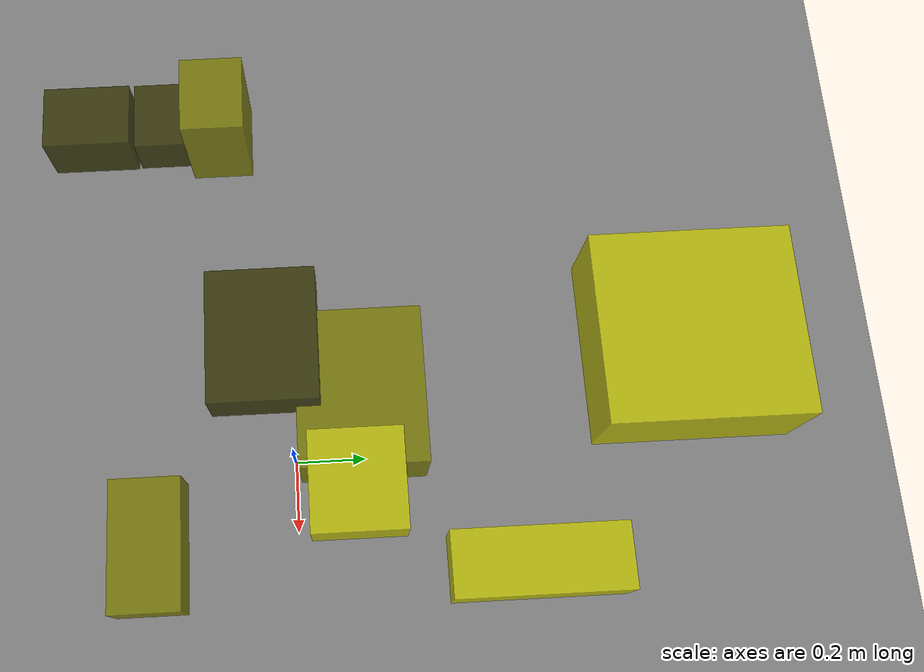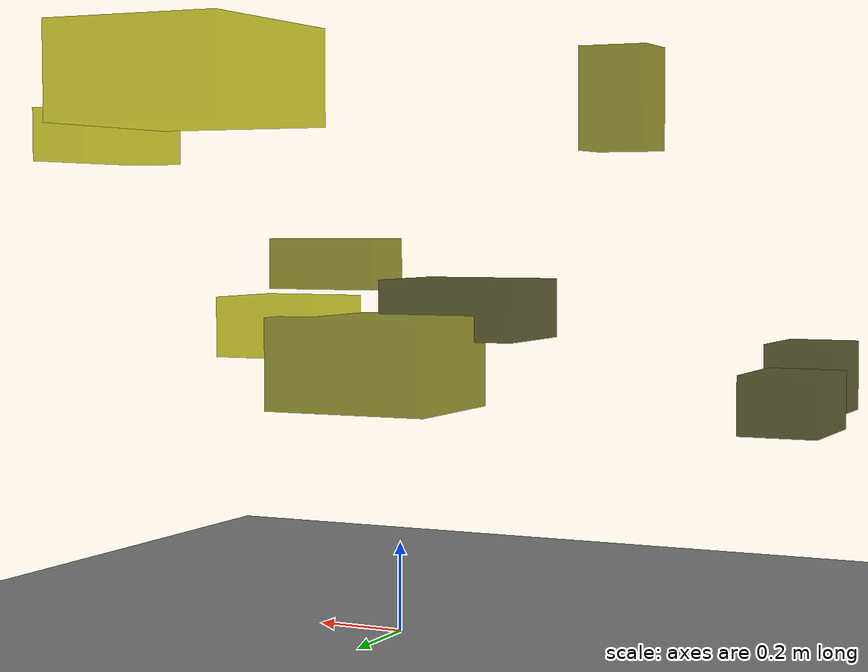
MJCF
<?xml version="1.0"?>
<mujoco model="obstacle_scene">
  <compiler angle="radian" coordinate="local"/>
  <option timestep="0.001" gravity="0 0 -9.81"/>

  <asset>
    <material name="obstacle_mat" rgba="0.8 0.8 0.0 0.8"/>
    <material name="ground_mat" rgba="0.5 0.5 0.5 1"/>
  </asset>

  <worldbody>
    <!-- Ground plane -->
    <geom name="ground" type="plane" size="3 3 0.1" material="ground_mat"/>

    <!-- Obstacles -->
    <body name="obstacle_0" pos="-0.153609 -0.033211 0.723807">
      <geom name="obs_0" type="box" size="0.156806 0.127600 0.065096" rgba="0.2 0.2 0.0 0.8"/>
    </body>
    <body name="obstacle_1" pos="-0.040320 0.187626 0.616585">
      <geom name="obs_1" type="box" size="0.185493 0.150265 0.098457" rgba="0.5 0.5 0.0 0.8"/>
    </body>
    <body name="obstacle_2" pos="0.182442 0.169786 0.689157">
      <geom name="obs_2" type="box" size="0.116501 0.109800 0.064531" rgba="0.8 0.8 0.0 0.8"/>
    </body>
    <body name="obstacle_3" pos="-0.806136 -0.476698 0.561763">
      <geom name="obs_3" type="box" size="0.080698 0.109232 0.079540" rgba="0.2 0.2 0.0 0.8"/>
    </body>
    <body name="obstacle_4" pos="0.315983 -0.280622 0.813651">
      <geom name="obs_4" type="box" size="0.139568 0.076535 0.059958" rgba="0.5 0.5 0.0 0.8"/>
    </body>
    <body name="obstacle_5" pos="0.017166 0.811159 1.182944">
      <geom name="obs_5" type="box" size="0.180426 0.188709 0.091888" rgba="0.8 0.8 0.0 0.8"/>
    </body>
    <body name="obstacle_6" pos="-0.826337 -0.242266 0.524929">
      <geom name="obs_6" type="box" size="0.087816 0.121048 0.065002" rgba="0.2 0.2 0.0 0.8"/>
    </body>
    <body name="obstacle_7" pos="-0.492296 -0.079112 1.175811">
      <geom name="obs_7" type="box" size="0.075435 0.060710 0.110164" rgba="0.5 0.5 0.0 0.8"/>
    </body>
    <body name="obstacle_8" pos="0.414159 0.500623 1.088737">
      <geom name="obs_8" type="box" size="0.063052 0.167853 0.053103" rgba="0.8 0.8 0.0 0.8"/>
    </body>
  </worldbody>
</mujoco>
